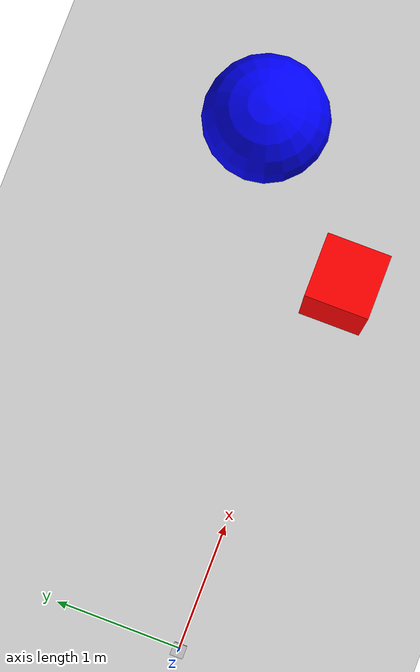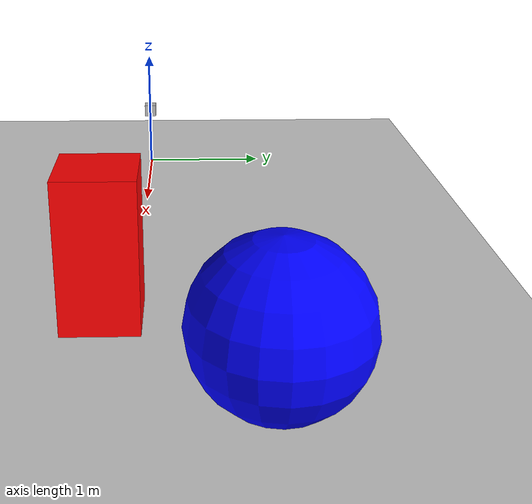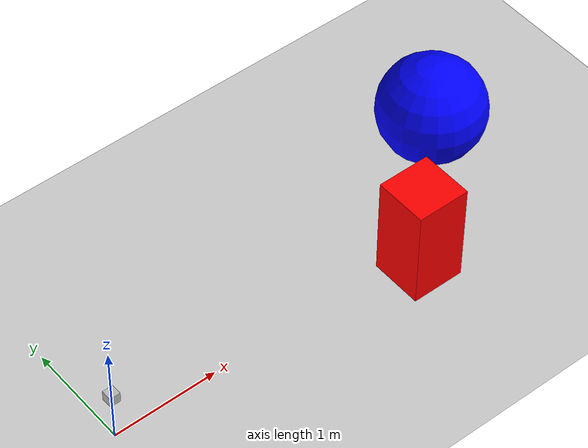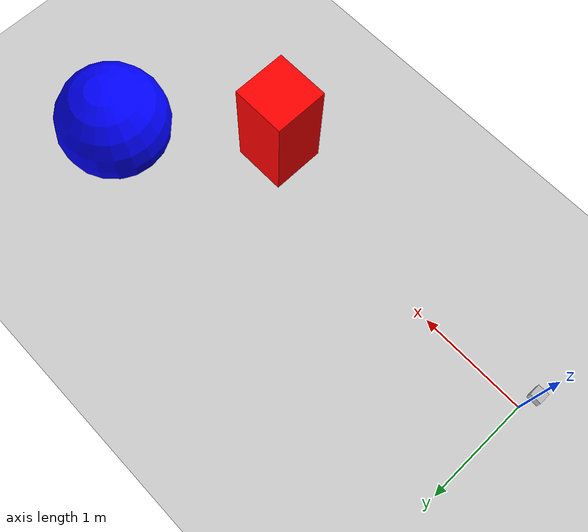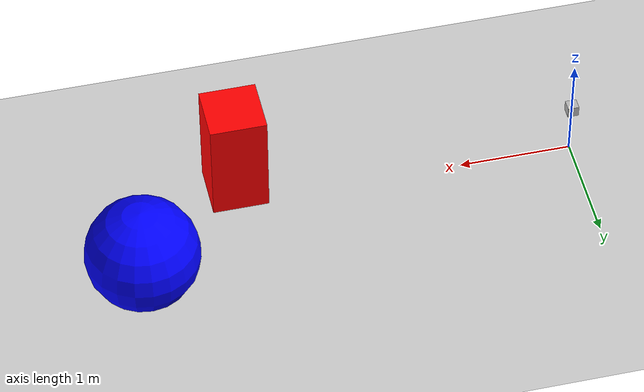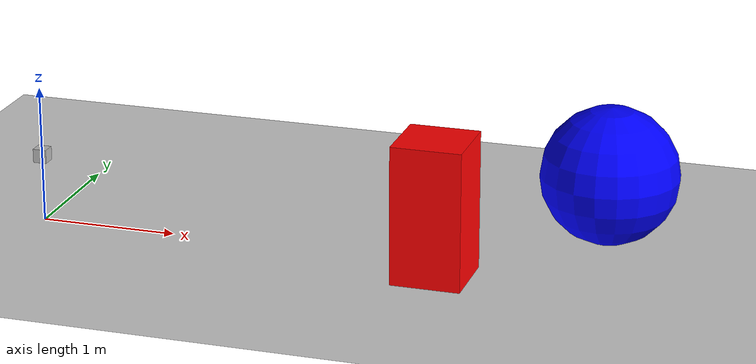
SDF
<?xml version="1.0" ?>
<sdf version="1.9">
  <world name="rgbd">
    <physics name="1ms" type="ignored">
      <max_step_size>0.001</max_step_size>
      <real_time_factor>1.0</real_time_factor>
    </physics>

    <!-- The defaults -->
    <plugin filename="gz-sim-physics-system" name="gz::sim::systems::Physics"/>
    <plugin filename="gz-sim-user-commands-system" name="gz::sim::systems::UserCommands"/>
    <plugin filename="gz-sim-scene-broadcaster-system" name="gz::sim::systems::SceneBroadcaster"/>
    <!-- Sensors: cameras are rendered, so it needs a render engine. -->
    <plugin filename="gz-sim-sensors-system" name="gz::sim::systems::Sensors">
      <render_engine>ogre2</render_engine>
    </plugin>

    <light type="directional" name="sun">
      <cast_shadows>true</cast_shadows>
      <pose>0 0 10 0 0 0</pose>
      <diffuse>0.8 0.8 0.8 1</diffuse>
      <specular>0.2 0.2 0.2 1</specular>
      <direction>-0.5 0.1 -0.9</direction>
    </light>

    <model name="ground_plane">
      <static>true</static>
      <link name="link">
        <collision name="collision">
          <geometry><plane><normal>0 0 1</normal><size>100 100</size></plane></geometry>
        </collision>
        <visual name="visual">
          <geometry><plane><normal>0 0 1</normal><size>100 100</size></plane></geometry>
          <material>
            <ambient>0.8 0.8 0.8 1</ambient>
            <diffuse>0.8 0.8 0.8 1</diffuse>
          </material>
        </visual>
      </link>
    </model>

    <model name="box">
      <pose>3 -0.2 0.5 0 0 0</pose>
      <link name="link">
        <inertial>
          <mass>1.0</mass>
          <inertia><ixx>0.1667</ixx><iyy>0.1667</iyy><izz>0.1667</izz></inertia>
        </inertial>
        <collision name="collision">
          <geometry><box><size>0.5 0.5 1</size></box></geometry>
        </collision>
        <visual name="visual">
          <geometry><box><size>0.5 0.5 1</size></box></geometry>
          <material>
            <ambient>1 0 0 1</ambient>
            <diffuse>1 0 0 1</diffuse>
          </material>
        </visual>
      </link>
    </model>

    <model name="sphere">
      <pose>4 0.8 0.5 0 0 0</pose>
      <link name="link">
        <inertial>
          <mass>1.0</mass>
          <inertia><ixx>0.1</ixx><iyy>0.1</iyy><izz>0.1</izz></inertia>
        </inertial>
        <collision name="collision">
          <geometry><sphere><radius>0.5</radius></sphere></geometry>
        </collision>
        <visual name="visual">
          <geometry><sphere><radius>0.5</radius></sphere></geometry>
          <material>
            <ambient>0 0 1 1</ambient>
            <diffuse>0 0 1 1</diffuse>
          </material>
        </visual>
      </link>
    </model>

    <!-- The camera: a static 10 cm cube at 0.5 m looking along +x. -->
    <model name="rgbd_camera">
      <static>true</static>
      <pose>0 0 0.5 0 0 0</pose>
      <link name="link">
        <visual name="visual">
          <geometry><box><size>0.1 0.1 0.1</size></box></geometry>
        </visual>
        <sensor name="rgbd_camera" type="rgbd_camera">
          <camera>
            <horizontal_fov>1.047</horizontal_fov>
            <image>
              <width>320</width>
              <height>240</height>
            </image>
            <clip>
              <near>0.1</near>
              <far>100</far>
            </clip>
          </camera>
          <always_on>1</always_on>
          <update_rate>30</update_rate>
          <visualize>true</visualize>
          <topic>rgbd_camera</topic>
        </sensor>
      </link>
    </model>
  </world>
</sdf>
